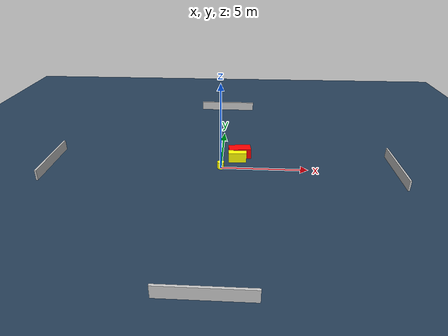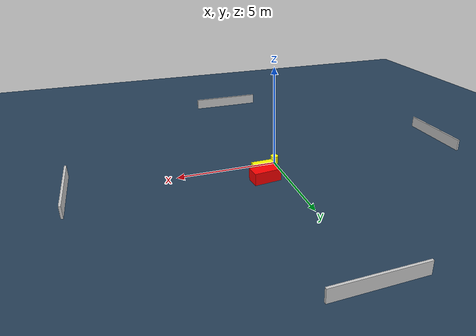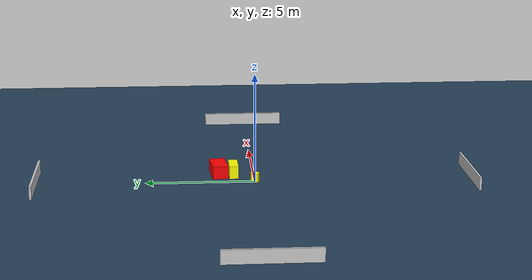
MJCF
<?xml version="1.0" ?>
<mujoco model="generated_environment">
  <option timestep="0.01" integrator="RK4" cone="elliptic"/>
  <default>
    <geom density="1"/>
  </default>
  <asset>
    <texture builtin="gradient" height="3072" name="skybox" rgb1="0.3 0.5 0.7" rgb2="0 0 0" type="skybox" width="512"/>
    <texture builtin="checker" height="300" name="groundplane" rgb1="0.2 0.3 0.4" rgb2="0.1 0.2 0.3" type="2d" width="300"/>
    <material name="groundplane" reflectance="0.2" texrepeat="5 5" texture="groundplane"/>
  </asset>
  <worldbody>
    <light dir="0 0 -1" directional="true" pos="0 0 1.5"/>
    <geom condim="3" friction="0.5 0.005 0.001" material="groundplane" name="floor" pos="0 0 0" size="0 0 0.05" type="plane"/>
    <body name="walls">
      <geom name="wall_1" condim="4" pos="-10.0 0.0 0.3" rgba="0.800000011920929 0.800000011920929 0.800000011920929 1.0" size="0.05 2.0 0.3" type="box"/>
      <geom name="wall_2" condim="4" pos="10.0 0.0 0.3" rgba="0.800000011920929 0.800000011920929 0.800000011920929 1.0" size="0.05 2.0 0.3" type="box"/>
      <geom name="wall_3" condim="4" pos="0.0 -10.0 0.3" rgba="0.800000011920929 0.800000011920929 0.800000011920929 1.0" size="2.0 0.05 0.3" type="box"/>
      <geom name="wall_4" condim="4" pos="0.0 10.0 0.3" rgba="0.800000011920929 0.800000011920929 0.800000011920929 1.0" size="2.0 0.05 0.3" type="box"/>
    </body>
    <body name="robot">
      <joint name="joint_x" type="slide" pos="0 0 0" axis="1 0 0"/>
      <joint name="joint_y" type="slide" pos="0 0 0" axis="0 1 0"/>
      <geom name="robot" type="cylinder" pos="0.0 0.0 0.2" size="0.2 0.2 0.0" mass="5.0" friction="1.0 0.005 0.0001" condim="4" rgba="1.0 1.0 0.0 1.0"/>
    </body>
    <body name="obstacle_1_movable">
      <geom name="obstacle_1_movable" condim="4" pos="0.9481771279506188 0.9503230939606125 0.3" euler="0 0 91.10544760050058" friction="0.0 0.005 0.001" rgba="1.0 1.0 0.0 1.0" size="0.21272270559901352 0.5322259719204578 0.3" type="box" mass="0.1"/>
      <joint type="free"/>
    </body>
    <body name="obstacle_2_static">
      <geom name="obstacle_2_static" condim="4" pos="1.0706575193011585 1.6171020948399817 0.3" euler="0 0 186.3545641572297" friction="0.0 0.005 0.001" rgba="1.0 0.0 0.0 1.0" size="0.6650354879913147 0.3617953244633792 0.3" type="box"/>
    </body>
  </worldbody>
  <actuator>
    <motor name="actuator_x" joint="joint_x" gear="1" ctrlrange="-1 1"/>
    <motor name="actuator_y" joint="joint_y" gear="1" ctrlrange="-1 1"/>
  </actuator>
</mujoco>
